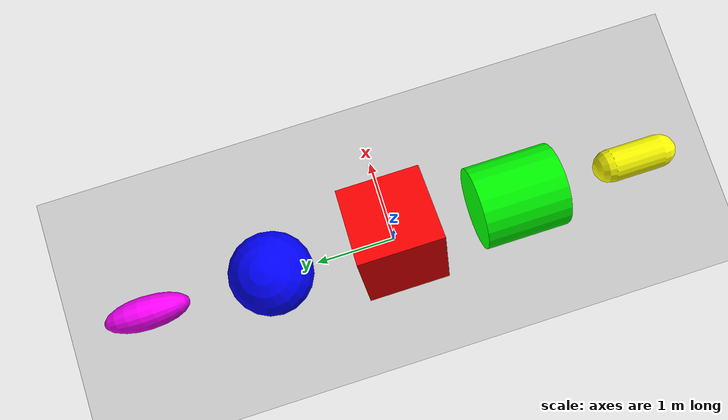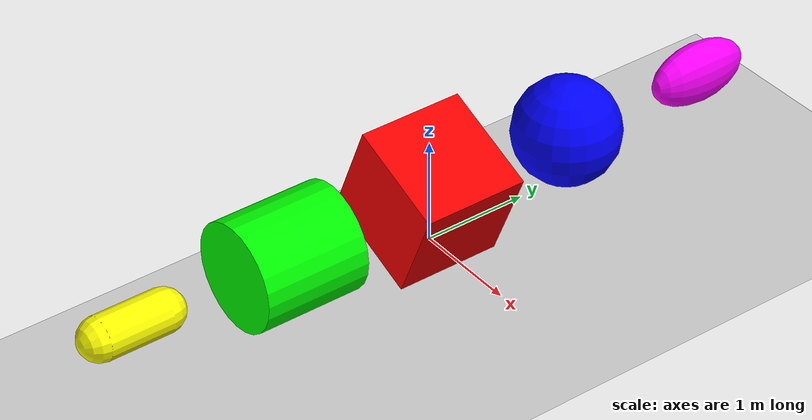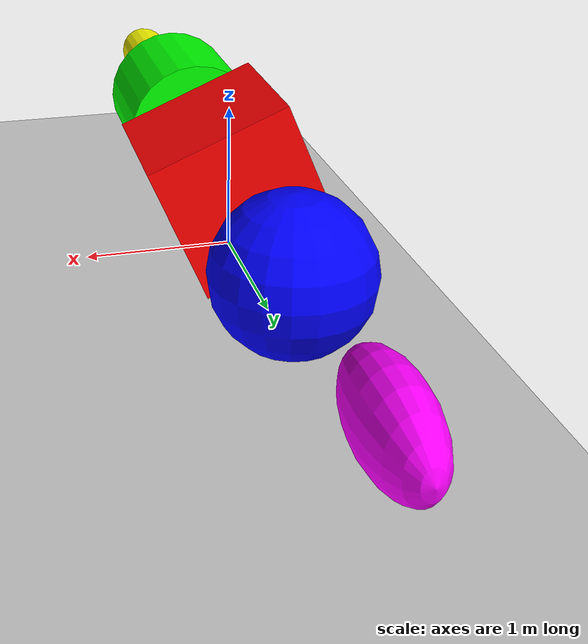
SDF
<?xml version="1.0" ?>
<!--
  Demo of simple shapes rolling downhill.
-->
<sdf version="1.6">
  <world name="shapes">
    <plugin
      filename="gz-sim-apply-link-wrench-system"
      name="gz::sim::systems::ApplyLinkWrench">
    </plugin>

    <physics name="1ms" type="ignored">
      <max_step_size>0.001</max_step_size>
      <real_time_factor>1.0</real_time_factor>
    </physics>
    <plugin
      filename="gz-sim-physics-system"
      name="gz::sim::systems::Physics">
    </plugin>
    <plugin
      filename="gz-sim-user-commands-system"
      name="gz::sim::systems::UserCommands">
    </plugin>
    <plugin
      filename="gz-sim-scene-broadcaster-system"
      name="gz::sim::systems::SceneBroadcaster">
    </plugin>

    <light type="directional" name="sun">
      <cast_shadows>true</cast_shadows>
      <pose>0 0 10 0 0 0</pose>
      <diffuse>0.8 0.8 0.8 1</diffuse>
      <specular>0.2 0.2 0.2 1</specular>
      <attenuation>
        <range>1000</range>
        <constant>0.9</constant>
        <linear>0.01</linear>
        <quadratic>0.001</quadratic>
      </attenuation>
      <direction>-0.5 0.1 -0.9</direction>
    </light>

    <model name="ground_plane">
      <static>true</static>
      <pose>0 0 -0.5 0 -0.52 0</pose>
      <link name="link">
        <collision name="collision">
          <geometry>
            <plane>
              <normal>0 0 1</normal>
              <size>100 100</size>
            </plane>
          </geometry>
        </collision>
        <visual name="visual">
          <geometry>
            <plane>
              <normal>0 0 1</normal>
              <size>100 100</size>
            </plane>
          </geometry>
          <material>
            <ambient>0.8 0.8 0.8 1</ambient>
            <diffuse>0.8 0.8 0.8 1</diffuse>
            <specular>0.8 0.8 0.8 1</specular>
          </material>
        </visual>
      </link>
    </model>

    <model name="box">
      <pose>0 0 0.5 0 0.4 0</pose>
      <link name="box_link">
        <inertial>
          <inertia>
            <ixx>0.16666</ixx>
            <ixy>0</ixy>
            <ixz>0</ixz>
            <iyy>0.16666</iyy>
            <iyz>0</iyz>
            <izz>0.16666</izz>
          </inertia>
          <mass>1.0</mass>
        </inertial>
        <collision name="box_collision">
          <geometry>
            <box>
              <size>1 1 1</size>
            </box>
          </geometry>
        </collision>

        <visual name="box_visual">
          <geometry>
            <box>
              <size>1 1 1</size>
            </box>
          </geometry>
          <material>
            <ambient>1 0 0 1</ambient>
            <diffuse>1 0 0 1</diffuse>
            <specular>1 0 0 1</specular>
          </material>
        </visual>
      </link>
    </model>

    <model name="cylinder">
      <pose>0 -1.5 0.5 1.57079632679 0 0</pose>
      <link name="cylinder_link">
        <inertial>
          <inertia>
            <ixx>0.0938</ixx>
            <ixy>0</ixy>
            <ixz>0</ixz>
            <iyy>0.0938</iyy>
            <iyz>0</iyz>
            <izz>0.125</izz>
          </inertia>
          <mass>1.0</mass>
        </inertial>
        <collision name="cylinder_collision">
          <geometry>
            <cylinder>
              <radius>0.5</radius>
              <length>1.0</length>
            </cylinder>
          </geometry>
        </collision>

        <visual name="cylinder_visual">
          <geometry>
            <cylinder>
              <radius>0.5</radius>
              <length>1.0</length>
            </cylinder>
          </geometry>
          <material>
            <ambient>0 1 0 1</ambient>
            <diffuse>0 1 0 1</diffuse>
            <specular>0 1 0 1</specular>
          </material>
        </visual>
      </link>
    </model>

    <model name="sphere">
      <pose>0 1.5 0.5 0 0 0</pose>
      <link name="sphere_link">
        <inertial>
          <inertia>
            <ixx>0.1</ixx>
            <ixy>0</ixy>
            <ixz>0</ixz>
            <iyy>0.1</iyy>
            <iyz>0</iyz>
            <izz>0.1</izz>
          </inertia>
          <mass>1.0</mass>
        </inertial>
        <collision name="sphere_collision">
          <geometry>
            <sphere>
              <radius>0.5</radius>
            </sphere>
          </geometry>
        </collision>

        <visual name="sphere_visual">
          <geometry>
            <sphere>
              <radius>0.5</radius>
            </sphere>
          </geometry>
          <material>
            <ambient>0 0 1 1</ambient>
            <diffuse>0 0 1 1</diffuse>
            <specular>0 0 1 1</specular>
          </material>
        </visual>
      </link>
    </model>

    <model name="capsule">
      <pose>0 -3.0 0.5 1.57079632679 0 0</pose>
      <link name="capsule_link">
        <inertial>
          <inertia>
            <ixx>0.074154</ixx>
            <ixy>0</ixy>
            <ixz>0</ixz>
            <iyy>0.074154</iyy>
            <iyz>0</iyz>
            <izz>0.018769</izz>
          </inertia>
          <mass>1.0</mass>
        </inertial>
        <collision name="capsule_collision">
          <geometry>
            <capsule>
              <radius>0.2</radius>
              <length>0.6</length>
            </capsule>
          </geometry>
        </collision>
        <visual name="capsule_visual">
          <geometry>
            <capsule>
              <radius>0.2</radius>
              <length>0.6</length>
            </capsule>
          </geometry>
          <material>
            <ambient>1 1 0 1</ambient>
            <diffuse>1 1 0 1</diffuse>
            <specular>1 1 0 1</specular>
          </material>
        </visual>
      </link>
    </model>

    <model name="ellipsoid">
      <pose>0 3.0 0.5 1.57079632679 0 0</pose>
      <link name="ellipsoid_link">
        <inertial>
          <inertia>
            <ixx>0.068</ixx>
            <ixy>0</ixy>
            <ixz>0</ixz>
            <iyy>0.058</iyy>
            <iyz>0</iyz>
            <izz>0.026</izz>
          </inertia>
          <mass>1.0</mass>
        </inertial>
        <collision name="ellipsoid_collision">
          <geometry>
            <ellipsoid>
              <radii>0.2 0.3 0.5</radii>
            </ellipsoid>
          </geometry>
        </collision>
        <visual name="ellipsoid_visual">
          <geometry>
            <ellipsoid>
              <radii>0.2 0.3 0.5</radii>
            </ellipsoid>
          </geometry>
          <material>
            <ambient>1 0 1 1</ambient>
            <diffuse>1 0 1 1</diffuse>
            <specular>1 0 1 1</specular>
          </material>
        </visual>
      </link>
    </model>
  </world>
</sdf>
